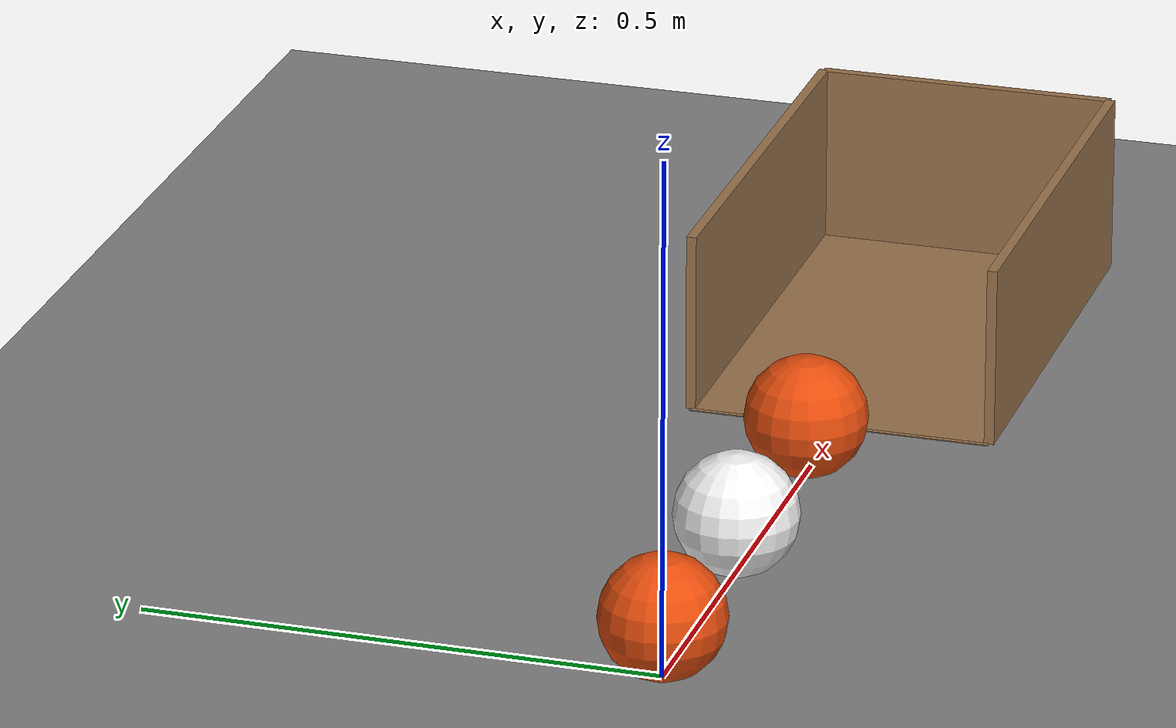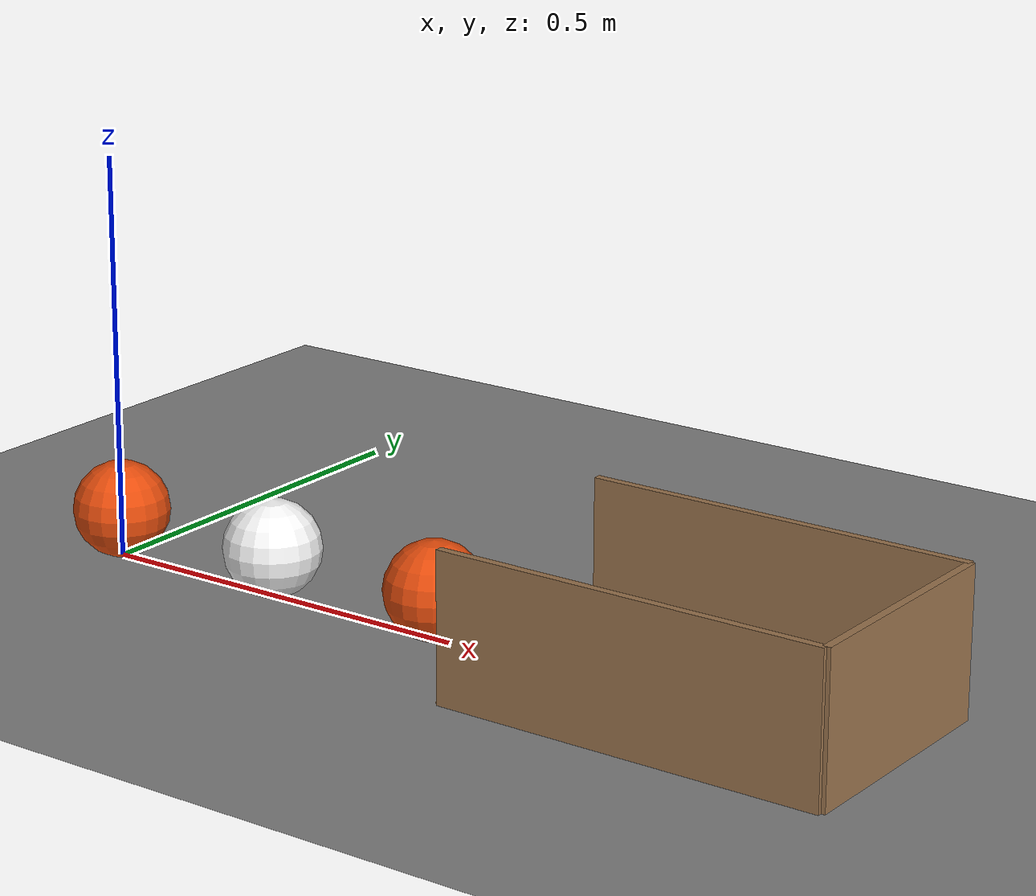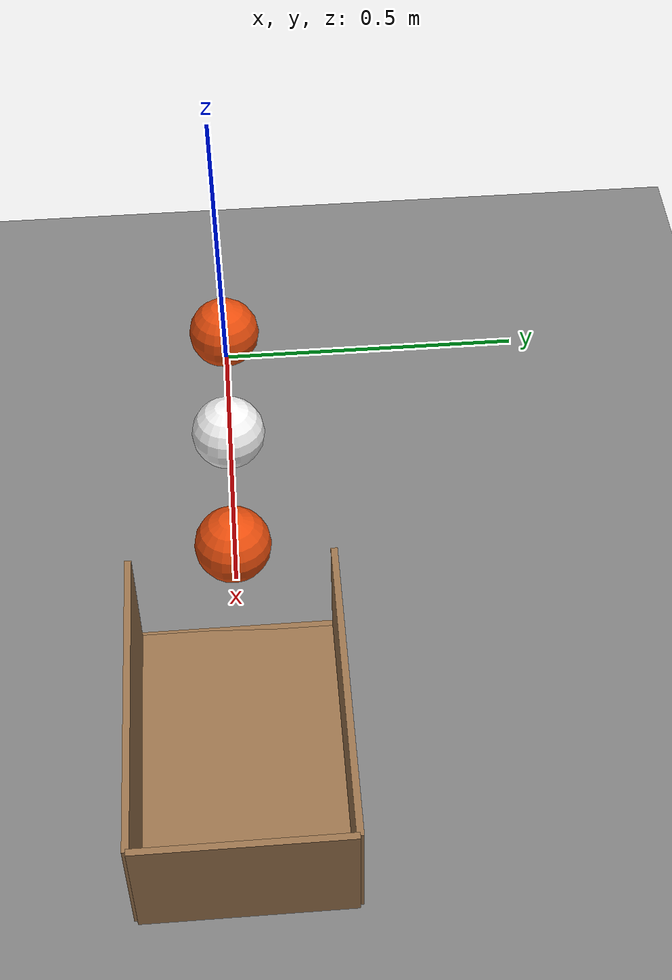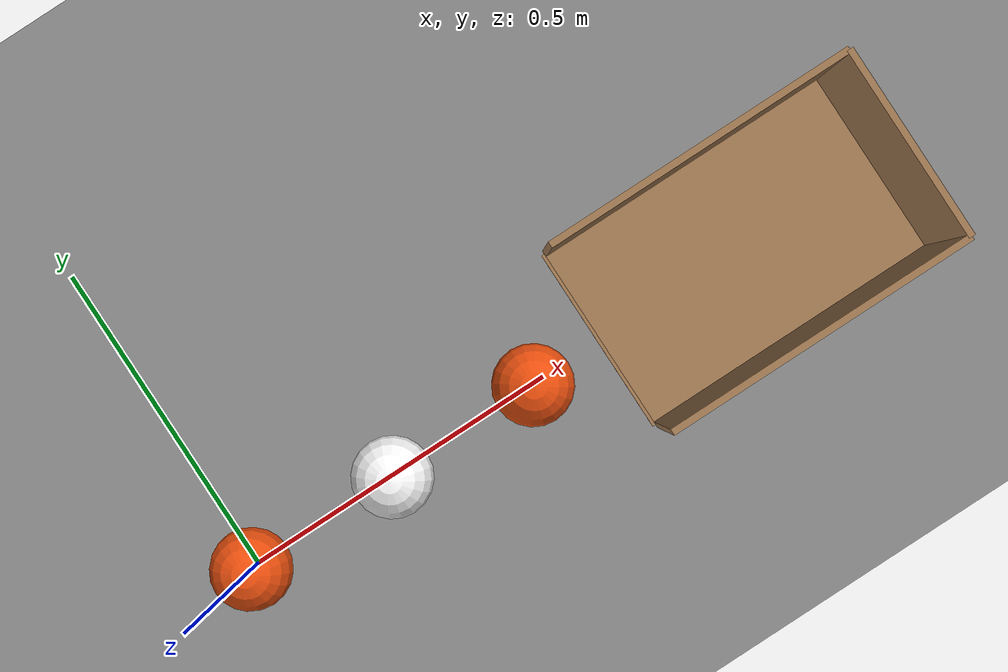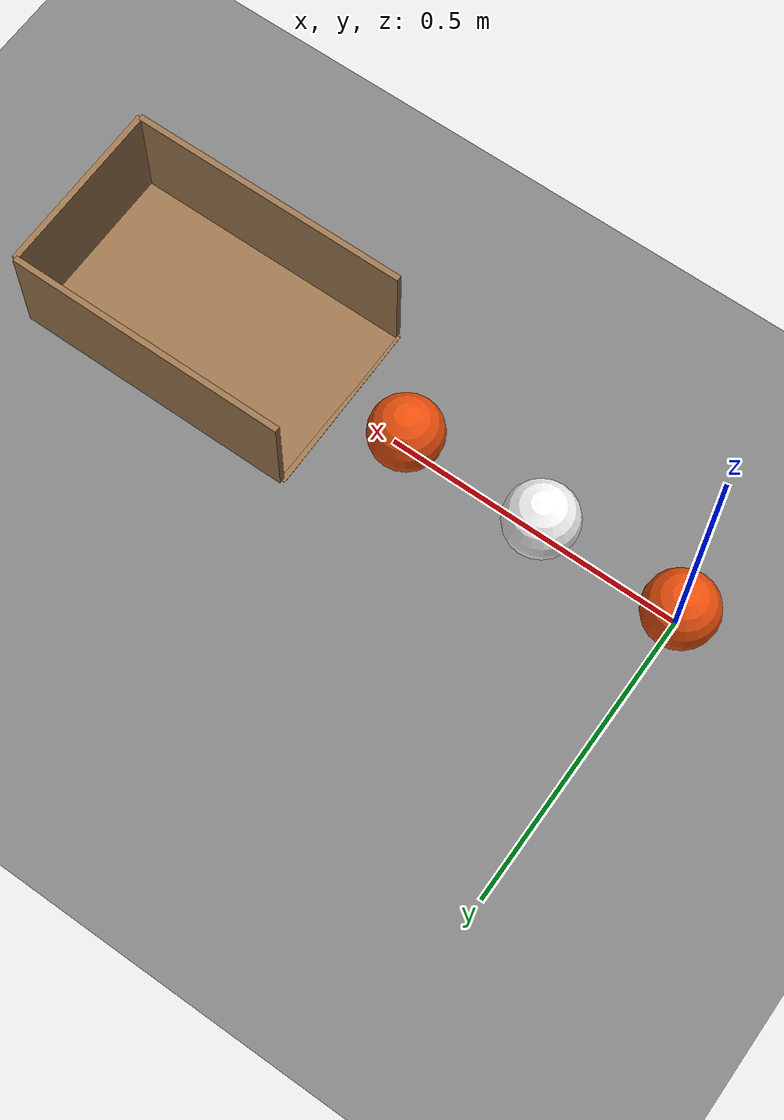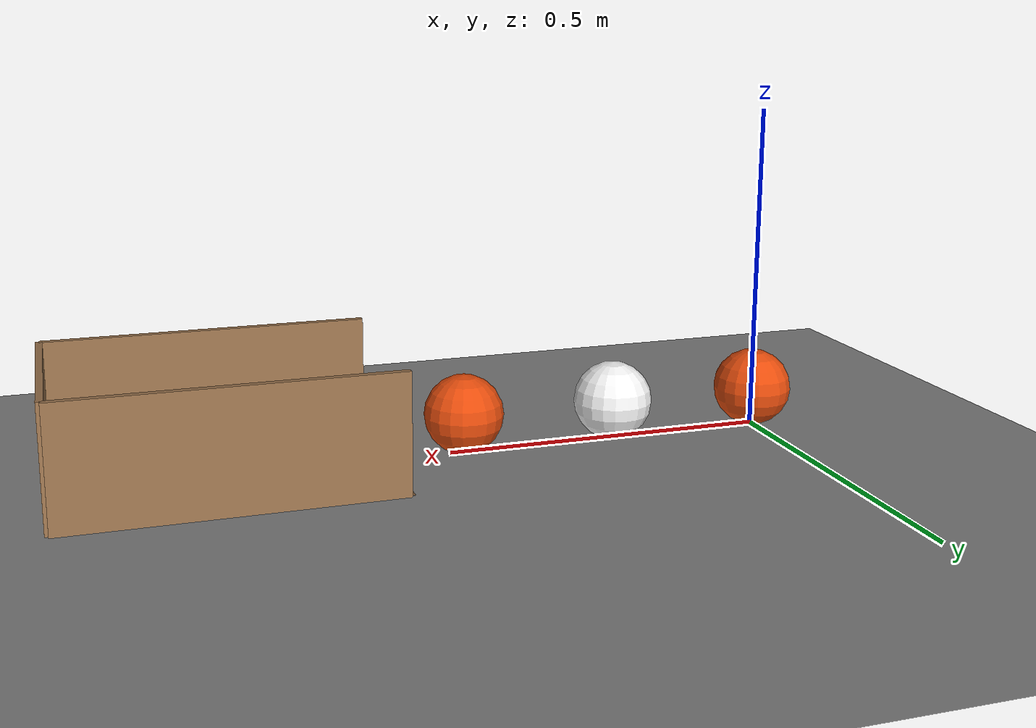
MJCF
<mujoco model="three_balls_roll_into_a_cup">
  <compiler angle="radian"/>
  <option timestep="0.002"/>
  <worldbody>
    <geom name="floor" type="plane" size="4 4 0.1" friction="0.6 0.005 0.003"/>
    <body name="ball1" pos="0 0 0.06">
      <freejoint/>
      <geom name="ball1" type="sphere" pos="0 0 0" size="0.06" mass="0.2" condim="6" friction="0.6 0.005 0.003" solref="0.01 0.2" rgba="0.9 0.3 0.05 1"/>
    </body>
    <body name="ball2" pos="0.24 0 0.06">
      <freejoint/>
      <geom name="ball2" type="sphere" pos="0 0 0" size="0.06" mass="0.2" condim="6" friction="0.6 0.005 0.003" solref="0.01 0.2" rgba="0.95 0.95 0.95 1"/>
    </body>
    <body name="ball3" pos="0.48 0 0.06">
      <freejoint/>
      <geom name="ball3" type="sphere" pos="0 0 0" size="0.06" mass="0.2" condim="6" friction="0.6 0.005 0.003" solref="0.01 0.2" rgba="0.9 0.3 0.05 1"/>
    </body>
    <body name="cup">
      <geom name="cup_base" type="box" pos="0.84 0 0.0005" size="0.24 0.15 0.0005" friction="0.6 0.005 0.003" solref="0.01 1" rgba="0.6 0.45 0.3 1"/>
      <geom name="cup_near_wall" type="box" pos="0.6 0 0.0005" size="0.005 0.15 0.0005" friction="0.6 0.005 0.003" solref="0.01 1" rgba="0.6 0.45 0.3 1"/>
      <geom name="cup_far_wall" type="box" pos="1.08 0 0.09" size="0.005 0.15 0.09" friction="0.6 0.005 0.003" solref="0.01 1" rgba="0.6 0.45 0.3 1"/>
      <geom name="cup_left_wall" type="box" pos="0.84 0.15 0.09" size="0.24 0.005 0.09" friction="0.6 0.005 0.003" solref="0.01 1" rgba="0.6 0.45 0.3 1"/>
      <geom name="cup_right_wall" type="box" pos="0.84 -0.15 0.09" size="0.24 0.005 0.09" friction="0.6 0.005 0.003" solref="0.01 1" rgba="0.6 0.45 0.3 1"/>
    </body>
  </worldbody>
  <keyframe>
    <key name="start" qpos="0 0 0.06 1 0 0 0 0.24 0 0.06 1 0 0 0 0.48 0 0.06 1 0 0 0" qvel="1.8 0 0 0 30 0 0 0 0 0 0 0 0 0 0 0 0 0"/>
  </keyframe>
</mujoco>
